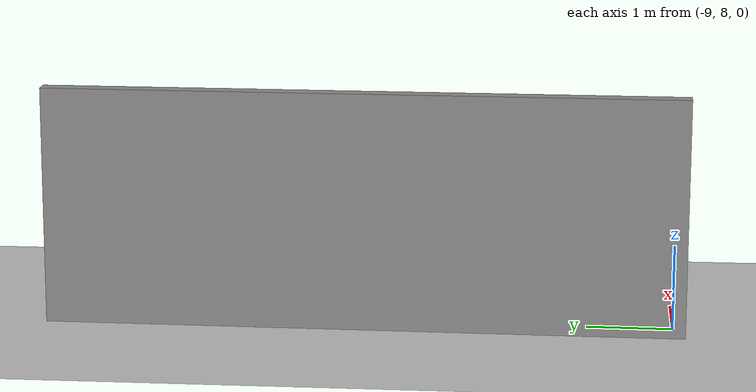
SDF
<sdf version="1.7">
 <world name="default">
  <model name="ground_plane">
   <static>1</static>
   <link name="link">
    <collision name="collision">
     <geometry><plane><normal>0 0 1</normal><size>100 100</size></plane></geometry>
     <surface><friction><ode><mu>100</mu><mu2>50</mu2></ode></friction></surface>
    </collision>
    <visual name="visual">
     <cast_shadows>0</cast_shadows>
     <geometry><plane><normal>0 0 1</normal><size>100 100</size></plane></geometry>
     <material>
      <script><uri>file://media/materials/scripts/gazebo.material</uri><name>Gazebo/Grey</name></script>
     </material>
    </visual>
   </link>
  </model>
  <model name="grey_wall_2_clone_4">
   <static>1</static>
   <link name="link">
    <pose>0 0 1.4 0 -0 0</pose>
    <collision name="collision"><geometry><box><size>7.5 0.2 2.8</size></box></geometry></collision>
    <visual name="visual">
     <cast_shadows>0</cast_shadows>
     <geometry><box><size>7.5 0.2 2.8</size></box></geometry>
     <material>
      <script>
       <uri>model://grey_wall/materials/scripts</uri>
       <uri>model://grey_wall/materials/textures</uri>
       <name>vrc/grey_wall</name>
      </script>
     </material>
    </visual>
   </link>
   <pose>-9.26399 11.6106 0 0 -0 1.5595</pose>
  </model>
 </world>
</sdf>
